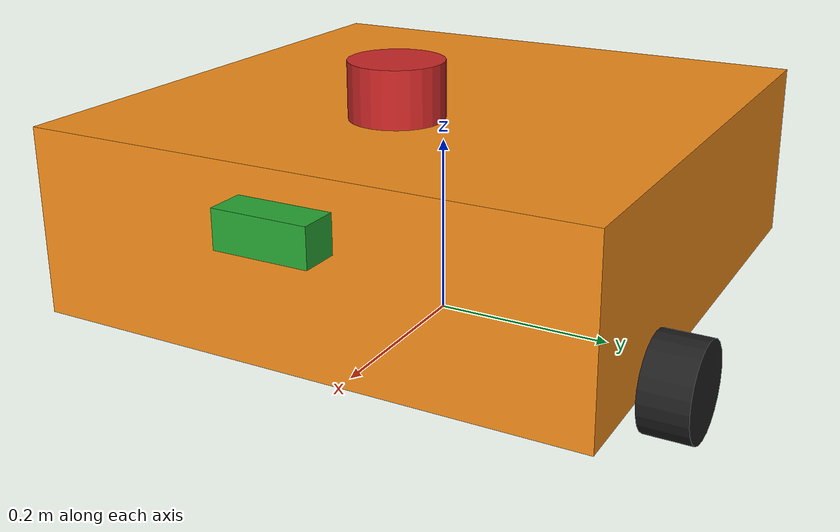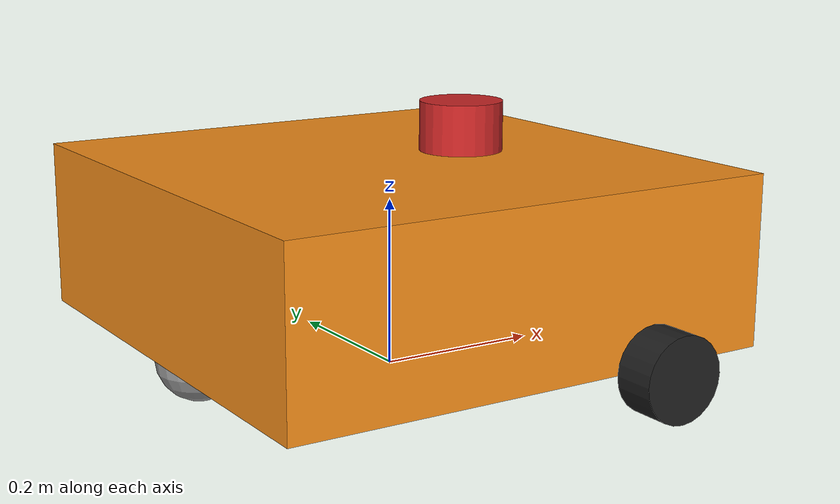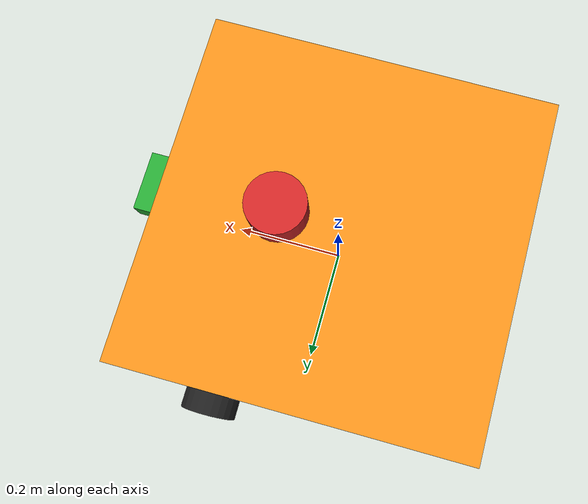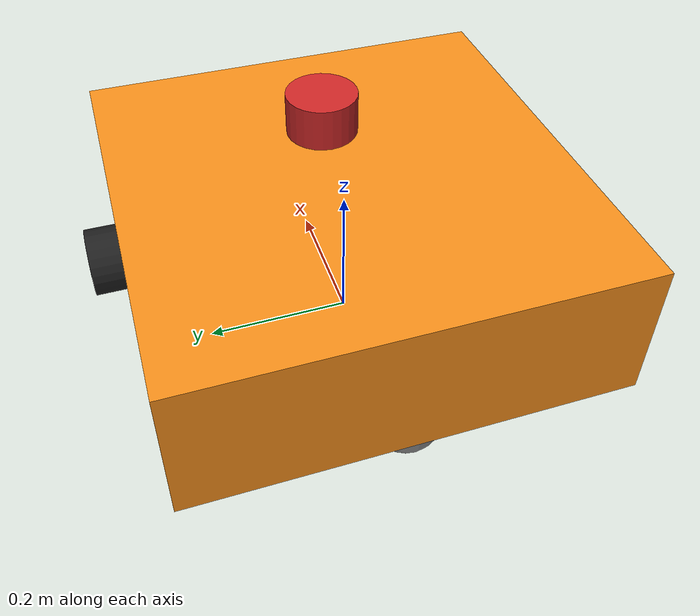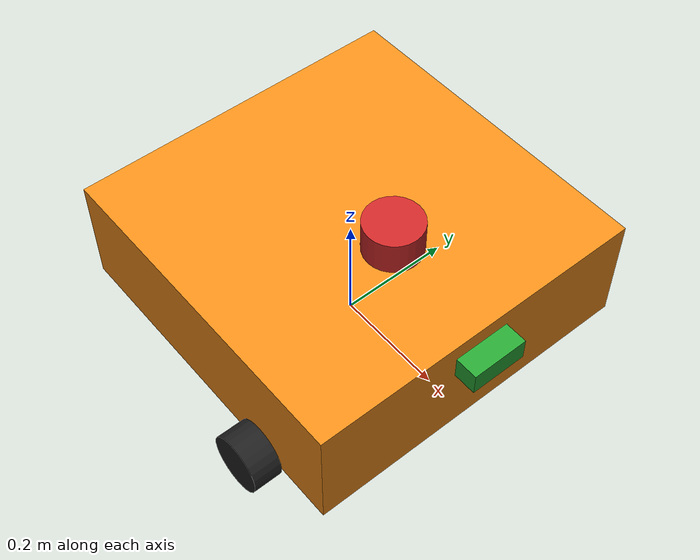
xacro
<?xml version='1.0'?>
<robot name="robot" xmlns:xacro="http://www.ros.org/wiki/xacro">

    <xacro:include filename="$(find power_nav_robot)/urdf/materials.xacro" />
    <xacro:include filename="$(find power_nav_robot)/urdf/robot_model.gazebo" />
    <xacro:include filename="$(find power_nav_robot)/urdf/wheel.xacro" />
    <xacro:include filename="$(find power_nav_robot)/urdf/inertial.xacro" />

    <!-- ================= БАЗА РОБОТА ================= -->
    <link name='base_footprint'/>
    <joint name="base_joint" type="fixed">
        <parent link="base_footprint"/>
        <child link="base_link"/>
        <origin xyz="0.0 0.0 0.05" rpy="0.0 0.0 0.0"/>
    </joint>

    <link name='base_link'>
        <visual name='base_visual'>
            <origin xyz="0.0 0.0 0.1" rpy="0.0 0.0 0.0"/>
            <geometry>
                <box size="0.6 0.6 0.2"/>
            </geometry>
            <material name="orange"/>
        </visual>
        <collision>
            <origin xyz="0.0 0.0 0.1" rpy="0.0 0.0 0.0"/>
            <geometry>
                <box size="0.6 0.6 0.2"/>
            </geometry>
        </collision>
        <xacro:inertial_box mass="5.0" x="0.6" y="0.6" z="0.2">
            <origin xyz="0 0 0.1" rpy="0 0 0"/>
        </xacro:inertial_box>

        <!-- Кастерное колесо (сфера) -->
        <visual name='caster_visual'>
            <origin xyz="-0.25 0.0 0.0" rpy="0.0 0.0 0.0"/>
            <geometry>
                <sphere radius="0.05" />
            </geometry>
            <material name="grey"/>
        </visual>
        <collision name='caster_collision'>
            <origin xyz="-0.25 0.0 0.0" rpy="0.0 0.0 0.0"/>
            <geometry>
                <sphere radius="0.05" />
            </geometry>
            <surface>
                <friction>
                    <ode>
                        <mu>0.0</mu>
                        <mu2>0.0</mu2>
                        <slip1>1.0</slip1>
                        <slip2>1.0</slip2>
                    </ode>
                </friction>
            </surface>
        </collision>
    </link>

    <!-- ================= КОЛЕСА ================= -->
    <xacro:wheel side="left" x="0.15" y="0.325" z="0.0"/>
    <xacro:wheel side="right" x="0.15" y="-0.325" z="0.0"/>

    <!-- ================= КАМЕРА ================= -->
    <link name="camera_link">
        <visual>
            <origin xyz="0 0 0" rpy="0 0 0"/>
            <geometry><box size="0.04 0.1 0.04"/></geometry>
            <material name="green"/>
        </visual>
        <collision>
            <origin xyz="0 0 0" rpy="0 0 0"/>
            <geometry><box size="0.04 0.1 0.04"/></geometry>
        </collision>
        <xacro:inertial_box mass="0.1" x="0.04" y="0.1" z="0.04">
            <origin xyz="0 0 0" rpy="0 0 0"/>
        </xacro:inertial_box>
    </link>
    <joint name="camera_joint" type="fixed">
        <origin xyz="0.32 0 0.15" rpy="0 0 0"/>
        <parent link="base_link"/>
        <child link="camera_link"/>
    </joint>

    <!-- ОПТИЧЕСКИЙ ФРЕЙМ КАМЕРЫ (ОБЯЗАТЕЛЬНО для ROS 2 / OpenCV / AprilTag) -->
    <link name="camera_link_optical"/>
    <joint name="camera_optical_joint" type="fixed">
        <parent link="camera_link"/>
        <child link="camera_link_optical"/>
        <!-- Поворот: X вправо, Y вниз, Z вперед -->
        <origin xyz="0 0 0" rpy="${-pi/2} 0 ${-pi/2}"/>
    </joint>

    <gazebo reference="camera_link">
        <material>Gazebo/Black</material>
        <sensor name="camera" type="camera">
            <pose> 0 0 0 0 0 0 </pose>
            <visualize>true</visualize>
            <update_rate>30</update_rate>
            <gz_frame_id>camera_link</gz_frame_id>
            <camera>
                <camera_info_topic>camera/camera_info</camera_info_topic>
                <horizontal_fov>1.089</horizontal_fov>
                <image>
                    <format>R8G8B8</format>
                    <width>640</width>
                    <height>480</height>
                </image>
                <clip>
                    <near>0.05</near>
                    <far>8.0</far>
                </clip>
            </camera>
            <topic>camera/image_raw</topic>
        </sensor>
    </gazebo>

    <!-- ================= ЛИДАР ================= -->
    <link name="lidar_link">
        <visual>
            <origin xyz="0 0 0" rpy="0 0 0"/>
            <geometry><cylinder radius="0.05" length="0.06"/></geometry>
            <material name="red"/>
        </visual>
        <collision>
            <origin xyz="0 0 0" rpy="0 0 0"/>
            <geometry><cylinder radius="0.05" length="0.06"/></geometry>
        </collision>
        <xacro:inertial_cylinder mass="0.2" length="0.06" radius="0.05">
            <origin xyz="0 0 0" rpy="0 0 0"/>
        </xacro:inertial_cylinder>
    </link>
    <joint name="lidar_joint" type="fixed">
        <origin xyz="0.1 0 0.23" rpy="0 0 0"/>
        <child link="lidar_link"/>
        <parent link="base_link"/>
    </joint>

    <gazebo reference="lidar_link">
        <material>Gazebo/Red</material>
        <sensor name='gpu_lidar' type='gpu_lidar'>
          <pose>0 0 0 0 0 0</pose>
          <topic>scan</topic>
          <gz_frame_id>lidar_link</gz_frame_id>
          <update_rate>10</update_rate>
          <lidar>
            <scan>
              <horizontal>
                <samples>720</samples>
                <resolution>1</resolution>
                <min_angle>${-pi}</min_angle>
                <max_angle>${pi}</max_angle>
              </horizontal>
            </scan>
            <range>
              <min>0.08</min>
              <max>10.0</max>
              <resolution>0.01</resolution>
            </range>
          </lidar>
          <visualize>true</visualize>
        </sensor>
    </gazebo>

</robot>

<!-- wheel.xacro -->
<robot name="diff_drive" xmlns:xacro="http://www.ros.org/wiki/xacro">
<xacro:macro name="wheel" params="side x y z">
    <link name='wheel_${side}'>
        <visual name='wheel_${side}_visual'>
            <origin xyz="0 0 0" rpy="0 0 0"/>
            <geometry>
                <cylinder length="0.05" radius="0.05"/>
            </geometry>
            <material name="black"/>
        </visual>
        <xacro:inertial_cylinder mass="1" length="0.05" radius="0.05">
            <origin xyz="0 0 0" rpy="0 0 0"/>
        </xacro:inertial_cylinder>
        <collision>
            <origin xyz="0 0 0" rpy="0 0 0"/>
            <geometry>
                <cylinder radius="0.05" length="0.05"/>
            </geometry>
        </collision>
    </link>

    <joint name="wheel_${side}_joint" type="continuous">
        <origin xyz="${x} ${y} ${z}" rpy="${-pi/2} 0 0"/>
        <child link="wheel_${side}"/>
        <axis xyz="0 0 1"/>
        <parent link="base_link"/>
        <limit effort="50" velocity="100"/>
        <joint_properties damping="0.1" friction="0.1"/>
    </joint>
</xacro:macro>
</robot>
